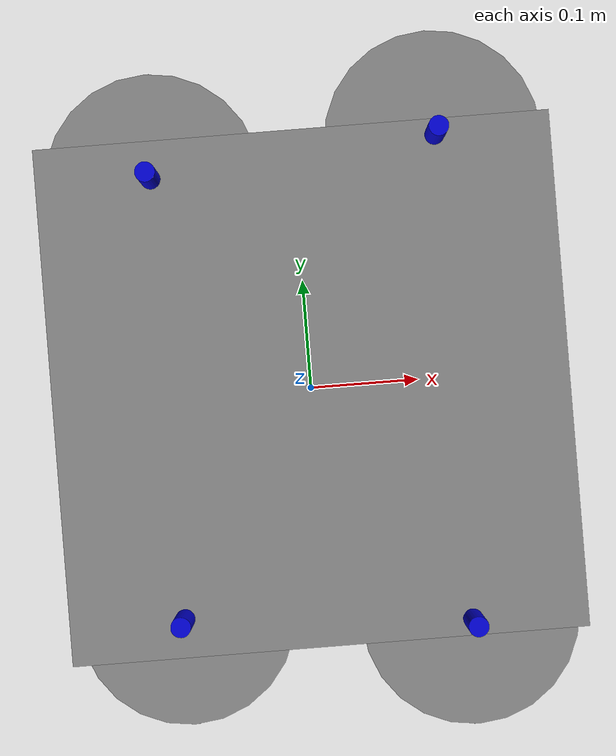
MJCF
<mujoco model="iris">/////////////////////////
    <compiler angle="radian" meshdir="../meshes/" />
    <size njmax="500" nconmax="100" />
    <asset>
        <mesh name="iris" file="iris.stl" />
        <mesh name="propeller_ccw" file="propeller_ccw.stl" scale="0.1 0.1 0.1" />
        <mesh name="propeller_cw" file="propeller_cw.stl" scale="0.1 0.1 0.1" />

        <texture type="skybox" builtin="gradient" rgb1=".4 .5 .6" rgb2="0 0 0" width="100" height="100"/>
    	<texture builtin="flat" height="1278" mark="cross" markrgb="1 1 1" name="texgeom" random="0.01" rgb1="0.8 0.6 0.4" rgb2="0.8 0.6 0.4" type="cube" width="127"/>
    	<texture builtin="checker" height="100" name="texplane" rgb1="0 0 0" rgb2="0.8 0.8 0.8" type="2d" width="100"/>
    	<material name="MatPlane" reflectance="0.5" shininess="1" specular="1" texrepeat="60 60" texture="texplane"/>
    	<material name="geom" texture="texgeom" texuniform="true"/>
    	<texture name="grid_new" type="2d" builtin="checker" rgb1=".1 .3 .2" rgb2=".2 .4 .3" width="1000" height="1000" mark="none" markrgb=".8 .6 .4"/>
    	<material name="grid_new" texture="grid_new" texrepeat="0.2 0.2" texuniform="true" reflectance=".2"/>
    </asset>

    <worldbody>
        <geom type="mesh" contype="0" conaffinity="0" group="1" mesh="iris" />
        <geom size="0.235 0.235 0.055" type="box" />
        <geom size="0.009 0.1" pos="0.13 -0.22 -0.102" type="cylinder" contype="0" conaffinity="0" group="1" rgba="0 0 0.8 1" />
        <geom size="0.009 0.1" pos="0.13 -0.22 0.023" type="cylinder" rgba="0 0 0.8 1" />
        <geom size="0.009 0.1" pos="-0.13 0.2 -0.102" type="cylinder" contype="0" conaffinity="0" group="1" rgba="0 0 0.8 1" />
        <geom size="0.009 0.1" pos="-0.13 0.2 0.023" type="cylinder" rgba="0 0 0.8 1" />
        <geom size="0.009 0.1" pos="0.13 0.22 -0.102" type="cylinder" contype="0" conaffinity="0" group="1" rgba="0 0 0.8 1" />
        <geom size="0.009 0.1" pos="0.13 0.22 0.023" type="cylinder" rgba="0 0 0.8 1" />
        <geom size="0.009 0.1" pos="-0.13 -0.2 -0.102" type="cylinder" contype="0" conaffinity="0" group="1" rgba="0 0 0.8 1" />
        <geom size="0.009 0.1" pos="-0.13 -0.2 0.023" type="cylinder" rgba="0 0 0.8 1" />
        <body name="iris/rotor_0" pos="0.13 -0.22 0.023">
            <inertial pos="0 0 0" quat="0 0.707107 0 0.707107" mass="0.005" diaginertia="4.26041e-05 4.17041e-05 9.75e-07" />
            <joint name="iris/rotor_0_joint" pos="0 0 0" axis="0 0 1" />
            <geom type="mesh" contype="0" conaffinity="0" group="1" mesh="propeller_ccw" />
            <geom size="0.1 0.0025" type="cylinder" />
        </body>
        <body name="iris/rotor_1" pos="-0.13 0.2 0.023">
            <inertial pos="0 0 0" quat="0 0.707107 0 0.707107" mass="0.005" diaginertia="4.26041e-05 4.17041e-05 9.75e-07" />
            <joint name="iris/rotor_1_joint" pos="0 0 0" axis="0 0 1" />
            <geom type="mesh" contype="0" conaffinity="0" group="1" mesh="propeller_ccw" />
            <geom size="0.1 0.0025" type="cylinder" />
        </body>
        <body name="iris/rotor_2" pos="0.13 0.22 0.023">
            <inertial pos="0 0 0" quat="0 0.707107 0 0.707107" mass="0.005" diaginertia="4.26041e-05 4.17041e-05 9.75e-07" />
            <joint name="iris/rotor_2_joint" pos="0 0 0" axis="0 0 1" />
            <geom type="mesh" contype="0" conaffinity="0" group="1" mesh="propeller_cw" />
            <geom size="0.1 0.0025" type="cylinder" />
        </body>
        <body name="iris/rotor_3" pos="-0.13 -0.2 0.023">
            <inertial pos="0 0 0" quat="0 0.707107 0 0.707107" mass="0.005" diaginertia="4.26041e-05 4.17041e-05 9.75e-07" />
            <joint name="iris/rotor_3_joint" pos="0 0 0" axis="0 0 1" />
            <geom type="mesh" contype="0" conaffinity="0" group="1" mesh="propeller_cw" />
            <geom size="0.1 0.0025" type="cylinder" />
        </body>
    </worldbody>
</mujoco>
